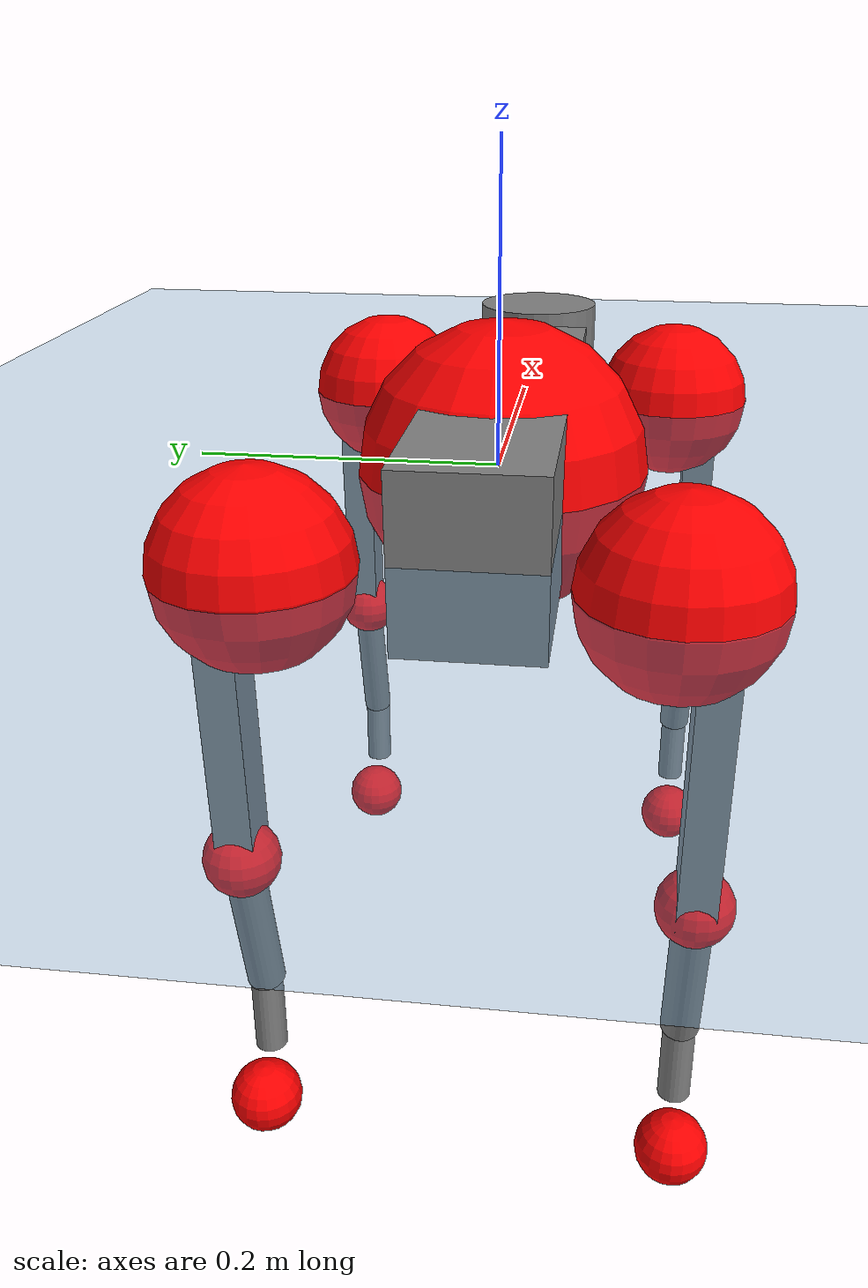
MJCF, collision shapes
<mujoco model="go2">
  <compiler angle="radian" assetdir="assets" balanceinertia="true" inertiafromgeom="false"/>

  <option timestep="0.005" density="1.2" viscosity="2e-05"/>

  <size nkey="1"/>

  <visual>
    <quality shadowsize="8192"/>
    <map shadowclip="0.5"/>
  </visual>

  <default>
    <default class="/">
      <geom contype="0" conaffinity="0" group="1" solref="-1000 -80"/>
      <site size="0.01 0.005 0.005" group="5"/>
      <general forcelimited="true" biastype="affine" gainprm="20" biasprm="0 -20 -0.5"/>
      <default class="go2">
        <joint armature="0.01" damping="0.01" frictionloss="0.2"/>
        <geom condim="1" margin="0.001"/>
        <default class="visual">
          <geom type="mesh" group="2"/>
        </default>
        <default class="collision">
          <geom group="3"/>
          <default class="foot">
            <geom size="0.022 0 0" condim="6" priority="1" friction="0.8 0.02 0.01" solimp="0.015 1 0.022"/>
          </default>
        </default>
        <default class="reward_collision_sphere">
          <geom group="5" rgba="1 0 0 1"/>
        </default>
      </default>
    </default>
  </default>

  <asset>
    <texture type="skybox" colorspace="auto" name="//unnamed_texture_0" builtin="gradient" rgb1="0.95 0.95 0.95" rgb2="0.95 0.95 0.95" width="100" height="600"/>
    <texture type="2d" colorspace="auto" name="texplane" builtin="checker" rgb1="0.345 0.575 0.748" rgb2="0.345 0.575 0.748" markrgb="1 1 1" width="512" height="512"/>
    <material name="MatPlane" class="/" texture="texplane" texuniform="true" texrepeat="2 2" specular="0.9"/>
    <material name="metal" class="/" rgba="0.9 0.95 0.95 1"/>
    <material name="black" class="/" rgba="0 0 0 1"/>
    <material name="white" class="/"/>
    <material name="gray" class="/" rgba="0.671705 0.692426 0.77427 1"/>
    <mesh name="base_0" class="/" file="base_0.obj"/>
    <mesh name="base_1" class="/" file="base_1.obj"/>
    <mesh name="base_2" class="/" file="base_2.obj"/>
    <mesh name="base_3" class="/" file="base_3.obj"/>
    <mesh name="base_4" class="/" file="base_4.obj"/>
    <mesh name="hip_0" class="/" file="hip_0.obj"/>
    <mesh name="hip_1" class="/" file="hip_1.obj"/>
    <mesh name="thigh_0" class="/" file="thigh_0.obj"/>
    <mesh name="thigh_1" class="/" file="thigh_1.obj"/>
    <mesh name="thigh_mirror_0" class="/" file="thigh_mirror_0.obj"/>
    <mesh name="thigh_mirror_1" class="/" file="thigh_mirror_1.obj"/>
    <mesh name="calf_0" class="/" file="calf_0.obj"/>
    <mesh name="calf_1" class="/" file="calf_1.obj"/>
    <mesh name="calf_mirror_0" class="/" file="calf_mirror_0.obj"/>
    <mesh name="calf_mirror_1" class="/" file="calf_mirror_1.obj"/>
    <mesh name="foot" class="/" file="foot.obj"/>
  </asset>

  <worldbody>
    <geom name="floor" class="/" size="100 100 0.125" type="plane" group="0" material="MatPlane"/>
    <light name="toplight_shadow" class="/" pos="0 0 5" dir="0.0990148 0.0990148 -0.990148" type="directional" ambient="0.04 0.04 0.04" diffuse="0.55 0.55 0.55" specular="0.12 0.12 0.12"/>
    <light name="toplight_fill" class="/" pos="0 0 5" dir="0.0990148 0.0990148 -0.990148" type="directional" castshadow="false" ambient="0.04 0.04 0.04" diffuse="0.3 0.3 0.3" specular="0.08 0.08 0.08"/>
    <body name="trunk" childclass="go2" pos="-0.000442841 -0.00275119 -0.000560648" quat="0.999999 -0.000581803 -0.000925514 -0.000842481">
      <inertial pos="0.0182181 -0.00187961 -0.00209424" quat="-0.00537577 0.712422 0.00898378 0.701673" mass="5.84001" diaginertia="0.0921001 0.072798 0.0145731"/>
      <joint name="//unnamed_joint_0" type="free" armature="0" damping="0" frictionloss="0"/>
      <geom name="//unnamed_geom_1" class="visual" material="black" mesh="base_0"/>
      <geom name="//unnamed_geom_2" class="visual" material="black" mesh="base_1"/>
      <geom name="//unnamed_geom_3" class="visual" material="black" mesh="base_2"/>
      <geom name="//unnamed_geom_4" class="visual" material="white" mesh="base_3"/>
      <geom name="//unnamed_geom_5" class="visual" material="gray" mesh="base_4"/>
      <geom name="trunk_1" class="collision" size="0.177295 0.0440645 0.0537257" type="box"/>
      <geom name="trunk_2" class="collision" size="0.0471278 0.042415" pos="0.279345 0 0.00900346" type="cylinder"/>
      <geom name="trunk_3" class="collision" size="0.0443001" pos="0.287186 0 -0.0540208"/>
      <geom name="//unnamed_geom_9" class="reward_collision_sphere" size="0.0942555"/>
      <geom name="//unnamed_geom_10" class="reward_collision_sphere" size="0.0565533" pos="0.274444 0 -0.0405156"/>
      <site name="imu" pos="-0.0198901 -0.00304729 0.0351307" size="0.00942555"/>
      <camera name="track" pos="0 -1.89433 0" quat="0.707107 0.707107 0 0" mode="trackcom"/>
      <camera name="ego_camera" pos="0.305809 0 0.0405156" quat="-0.5 -0.5 0.5 0.5"/>
      <body name="FL_hip" pos="0.188749 0.0446629 -0.00034774" quat="1 0.000223007 -8.43211e-05 -0.000119496">
        <inertial pos="-0.00569335 -0.000716781 -0.00106342" quat="0.491492 0.501514 0.508207 0.498643" mass="0.565093" diaginertia="0.000801795 0.000440785 0.000283596"/>
        <joint name="FL_hip_joint" pos="0 0 0" axis="0.999905 -0.0134015 -0.00322653" stiffness="0.0114013" range="-1.09488 1.06541" armature="0.00956831" damping="0" frictionloss="0.183602"/>
        <geom name="//unnamed_geom_11" class="visual" material="metal" mesh="hip_0"/>
        <geom name="//unnamed_geom_12" class="visual" material="gray" mesh="hip_1"/>
        <geom name="//unnamed_geom_13" class="collision" size="0.0433575 0.0188511" pos="0 0.0757731 0" quat="0.707107 0.707107 0 0" type="cylinder"/>
        <geom name="//unnamed_geom_14" class="reward_collision_sphere" size="0.0565533" pos="0 0.0663014 0"/>
        <body name="FL_thigh" pos="0.0020147 0.0925171 -0.000388493" quat="1 -0.000308818 -7.62727e-05 0.000866045">
          <inertial pos="-0.00351429 -0.0194405 -0.0282453" quat="0.829467 0.091619 -0.021239 0.550581" mass="0.998556" diaginertia="0.00524523 0.0045943 0.000522008"/>
          <joint name="FL_thigh_joint" pos="0 0 0" axis="0.000623852 0.999868 -0.0162112" stiffness="0.0130888" range="-1.62525 3.44352" armature="0.0102446" damping="0.000449338" frictionloss="0.165785"/>
          <geom name="//unnamed_geom_15" class="visual" material="metal" mesh="thigh_0"/>
          <geom name="//unnamed_geom_16" class="visual" material="gray" mesh="thigh_1"/>
          <geom name="//unnamed_geom_17" class="collision" size="0.100382 0.0115463 0.0160234" pos="0 0 -0.0958869" quat="0.707107 0 0.707107 0" type="box"/>
          <body name="FL_calf" pos="-1.65973e-06 -0.0016229 -0.191212" quat="1 0.000306626 -3.6154e-05 0.000209523">
            <inertial pos="0.0036419 -0.00311124 -0.129612" quat="0.709007 -0.00284072 -0.00300749 0.705189" mass="0.197542" diaginertia="0.00129926 0.0011099 3.07857e-05"/>
            <joint name="FL_calf_joint" pos="0 0 0" axis="-0.00162602 0.999939 0.0108987" stiffness="0.0141109" range="-2.69029 -0.782152" armature="0.00821351" damping="0" frictionloss="0.195722"/>
            <geom name="//unnamed_geom_18" class="visual" material="gray" mesh="calf_0"/>
            <geom name="//unnamed_geom_19" class="visual" material="black" mesh="calf_1"/>
            <geom name="FL_calf0" class="collision" size="0.0113107 0.0565533" pos="0.00784125 0 -0.0540208" quat="0.994493 0 -0.104807 0" type="cylinder"/>
            <geom name="//unnamed_geom_21" class="collision" size="0.0103681 0.030633" pos="0.0196031 0 -0.133251" quat="0.999688 0 0.0249974 0" type="cylinder"/>
            <geom name="//unnamed_geom_22" class="visual" pos="0 0 -0.191774" quat="1 0 0 0" material="black" mesh="foot"/>
            <geom name="FL_foot" class="foot" size="0.0160126" pos="-0.00196031 0 -0.191774"/>
            <geom name="//unnamed_geom_24" class="reward_collision_sphere" size="0.0235639"/>
            <geom name="//unnamed_geom_25" class="reward_collision_sphere" size="0.0235639" pos="-0.00196031 0 -0.191774"/>
            <site name="FL_foot" class="foot" pos="-0.00196031 0 -0.191774" size="0.00942555"/>
          </body>
        </body>
      </body>
      <body name="FR_hip" pos="0.187862 -0.0457911 -0.00150292" quat="1 -6.76427e-05 0.000589366 -0.000184679">
        <inertial pos="-0.0039998 -0.000538458 -0.00101338" quat="0.501247 0.494941 0.501734 0.502043" mass="0.561346" diaginertia="0.000774939 0.000454705 0.000288559"/>
        <joint name="FR_hip_joint" pos="0 0 0" axis="0.999923 0.00805342 0.00939839" range="-1.07026 1.10378" armature="0.00856997" damping="0.00538576" frictionloss="0.191297"/>
        <geom name="//unnamed_geom_26" class="visual" pos="0 4.0785e-10 1.74935e-08" quat="4.63268e-05 1 0 0" material="metal" mesh="hip_0"/>
        <geom name="//unnamed_geom_27" class="visual" pos="0 6.61174e-10 -4.32682e-08" quat="4.63268e-05 1 0 0" material="gray" mesh="hip_1"/>
        <geom name="//unnamed_geom_28" class="collision" size="0.0433575 0.0188511" pos="0 -0.0757731 0" quat="0.707107 0.707107 0 0" type="cylinder"/>
        <geom name="//unnamed_geom_29" class="reward_collision_sphere" size="0.0565533" pos="0 -0.0663014 0"/>
        <body name="FR_thigh" pos="7.14583e-06 -0.0901358 0.00119885" quat="1 0.00013947 -1.64863e-05 6.60553e-05">
          <inertial pos="-0.00118529 0.0186183 -0.0271518" quat="0.547553 -0.0213226 0.0842951 0.832241" mass="0.972335" diaginertia="0.0052153 0.00446138 0.000520935"/>
          <joint name="FR_thigh_joint" pos="0 0 0" axis="1.1723e-05 -1 -3.78996e-05" stiffness="0.00629071" range="-3.48857 1.5837" armature="0.00834455" damping="0.0249906" frictionloss="0.163914"/>
          <geom name="//unnamed_geom_30" class="visual" material="metal" mesh="thigh_mirror_0"/>
          <geom name="//unnamed_geom_31" class="visual" material="gray" mesh="thigh_mirror_1"/>
          <geom name="//unnamed_geom_32" class="collision" size="0.100382 0.0115463 0.0160234" pos="0 0 -0.0958869" quat="0.707107 0 0.707107 0" type="box"/>
          <body name="FR_calf" pos="-0.00196709 -0.000145325 -0.188374" quat="1 -0.000150147 -9.28294e-05 -0.000134017">
            <inertial pos="0.00355602 0.00340638 -0.127065" quat="0.703026 -0.0104871 0.00654153 0.711057" mass="0.206742" diaginertia="0.00135543 0.0011805 3.11013e-05"/>
            <joint name="FR_calf_joint" pos="0 0 0" axis="0.00678366 -0.999976 -0.00110253" stiffness="0.000369435" range="0.847002 2.72442" armature="0.00986549" damping="0" frictionloss="0.177783"/>
            <geom name="//unnamed_geom_33" class="visual" material="gray" mesh="calf_mirror_0"/>
            <geom name="//unnamed_geom_34" class="visual" material="black" mesh="calf_mirror_1"/>
            <geom name="FR_calf0" class="collision" size="0.0122532 0.0565533" pos="0.00980156 0 -0.0540208" quat="0.995004 0 -0.0998334 0" type="cylinder"/>
            <geom name="//unnamed_geom_36" class="collision" size="0.0103681 0.030633" pos="0.0196031 0 -0.133251" quat="0.999688 0 0.0249974 0" type="cylinder"/>
            <geom name="//unnamed_geom_37" class="visual" pos="0 0 -0.191774" quat="1 0 0 0" material="black" mesh="foot"/>
            <geom name="FR_foot" class="foot" size="0.0200229" pos="-0.00196031 0 -0.191774"/>
            <geom name="//unnamed_geom_39" class="reward_collision_sphere" size="0.0235639"/>
            <geom name="//unnamed_geom_40" class="reward_collision_sphere" size="0.0235639" pos="-0.00196031 0 -0.191774"/>
            <site name="FR_foot" class="foot" pos="-0.00196031 0 -0.191774" size="0.00942555"/>
          </body>
        </body>
      </body>
      <body name="RL_hip" pos="-0.188937 0.0460476 0.00119125" quat="1 0.000274102 0.00025602 0.000216875">
        <inertial pos="0.00478146 0.00279354 0.00277826" quat="0.504866 0.499272 0.496439 0.499385" mass="0.547032" diaginertia="0.000792743 0.000435153 0.000287782"/>
        <joint name="RL_hip_joint" pos="0 0 0" axis="-0.999929 -0.000552572 0.0119346" stiffness="0.0109504" range="-0.995634 1.02015" armature="0.00962695" damping="0.0112932" frictionloss="0.215101"/>
        <geom name="//unnamed_geom_41" class="visual" pos="-6.9527e-10 0 -1.36289e-07" quat="4.63268e-05 0 1 0" material="metal" mesh="hip_0"/>
        <geom name="//unnamed_geom_42" class="visual" pos="-1.12712e-09 0 -1.20869e-07" quat="4.63268e-05 0 1 0" material="gray" mesh="hip_1"/>
        <geom name="//unnamed_geom_43" class="collision" size="0.0433575 0.0188511" pos="0 0.0757731 0" quat="0.707107 0.707107 0 0" type="cylinder"/>
        <geom name="//unnamed_geom_44" class="reward_collision_sphere" size="0.0565533" pos="0 0.0663014 0"/>
        <body name="RL_thigh" pos="-0.000419582 0.0879956 0.00261011" quat="0.999999 -0.000708005 -0.000971324 -4.14896e-05">
          <inertial pos="-0.0031064 -0.0197019 -0.0282016" quat="0.821779 0.0839176 -0.0225796 0.563141" mass="0.942776" diaginertia="0.0052341 0.00459774 0.000537515"/>
          <joint name="RL_thigh_joint" pos="0 0 0" axis="0.00656063 0.999978 -0.000533004" stiffness="0.00305475" range="-0.501233 4.54332" armature="0.0107091" damping="0.0237458" frictionloss="0.165936"/>
          <geom name="//unnamed_geom_45" class="visual" material="metal" mesh="thigh_0"/>
          <geom name="//unnamed_geom_46" class="visual" material="gray" mesh="thigh_1"/>
          <geom name="//unnamed_geom_47" class="collision" size="0.100382 0.0115463 0.0160234" pos="0 0 -0.0958869" quat="0.707107 0 0.707107 0" type="box"/>
          <body name="RL_calf" pos="-0.00219602 5.32204e-05 -0.189547" quat="0.999999 -0.000680692 -0.00101752 -0.000113448">
            <inertial pos="0.00621667 0.00220296 -0.126239" quat="0.709422 0.000442635 -0.00146194 0.704783" mass="0.198573" diaginertia="0.00128606 0.00106425 2.99936e-05"/>
            <joint name="RL_calf_joint" pos="0 0 0" axis="-0.0062559 0.999949 -0.00792042" stiffness="0.0101011" range="-2.68456 -0.823775" armature="0.010224" damping="0.0133847" frictionloss="0.163298"/>
            <geom name="//unnamed_geom_48" class="visual" material="gray" mesh="calf_0"/>
            <geom name="//unnamed_geom_49" class="visual" material="black" mesh="calf_1"/>
            <geom name="RL_calf0" class="collision" size="0.0122532 0.0565533" pos="0.00980156 0 -0.0540208" quat="0.995004 0 -0.0998334 0" type="cylinder"/>
            <geom name="//unnamed_geom_51" class="collision" size="0.0103681 0.030633" pos="0.0196031 0 -0.133251" quat="0.999688 0 0.0249974 0" type="cylinder"/>
            <geom name="//unnamed_geom_52" class="visual" pos="0 0 -0.191774" quat="1 0 0 0" material="black" mesh="foot"/>
            <geom name="RL_foot" class="foot" size="0.0174982" pos="-0.00196031 0 -0.191774"/>
            <geom name="//unnamed_geom_54" class="reward_collision_sphere" size="0.0235639"/>
            <geom name="//unnamed_geom_55" class="reward_collision_sphere" size="0.0235639" pos="-0.00196031 0 -0.191774"/>
            <site name="RL_foot" class="foot" pos="-0.00196031 0 -0.191774" size="0.00942555"/>
          </body>
        </body>
      </body>
      <body name="RR_hip" pos="-0.191526 -0.0454384 -0.00121083" quat="1 0.000150249 0.000429862 -0.000498279">
        <inertial pos="0.00450071 -0.00222973 0.000753706" quat="0.49984 0.495079 0.497807 0.507193" mass="0.554548" diaginertia="0.000780677 0.000445336 0.000281233"/>
        <joint name="RR_hip_joint" pos="0 0 0" axis="-0.999996 0.000809133 0.00266118" stiffness="0.0104576" range="-1.03323 1.10241" armature="0.0105684" damping="0.00621491" frictionloss="0.213002"/>
        <geom name="//unnamed_geom_56" class="visual" pos="6.94127e-10 4.0785e-10 -1.53782e-07" quat="2.14617e-09 4.63268e-05 4.63268e-05 -1" material="metal" mesh="hip_0"/>
        <geom name="//unnamed_geom_57" class="visual" pos="1.12994e-09 6.61174e-10 -7.76006e-08" quat="2.14617e-09 4.63268e-05 4.63268e-05 -1" material="gray" mesh="hip_1"/>
        <geom name="//unnamed_geom_58" class="collision" size="0.0433575 0.0188511" pos="0 -0.0757731 0" quat="0.707107 0.707107 0 0" type="cylinder"/>
        <geom name="//unnamed_geom_59" class="reward_collision_sphere" size="0.0565533" pos="0 -0.0663014 0"/>
        <body name="RR_thigh" pos="-0.0024763 -0.0882272 -0.00309478" quat="1 1.93303e-05 0.000168748 0.000517286">
          <inertial pos="-0.00334165 0.0184165 -0.0294544" quat="0.547621 -0.0197855 0.0854818 0.832113" mass="0.966699" diaginertia="0.00543364 0.00441636 0.000500374"/>
          <joint name="RR_thigh_joint" pos="0 0 0" axis="0.0024691 -0.999986 -0.00474031" stiffness="0.011234" range="-4.54843 0.556887" armature="0.00849475" damping="0.0247683" frictionloss="0.196107"/>
          <geom name="//unnamed_geom_60" class="visual" material="metal" mesh="thigh_mirror_0"/>
          <geom name="//unnamed_geom_61" class="visual" material="gray" mesh="thigh_mirror_1"/>
          <geom name="//unnamed_geom_62" class="collision" size="0.100382 0.0115463 0.0160234" pos="0 0 -0.0958869" quat="0.707107 0 0.707107 0" type="box"/>
          <body name="RR_calf" pos="0.00359526 -0.000102113 -0.191892" quat="1 0.000107397 -0.000464685 -2.07555e-05">
            <inertial pos="0.00363497 -0.000495556 -0.127171" quat="0.703312 -0.00440213 0.00310372 0.710861" mass="0.208202" diaginertia="0.00134783 0.00113954 3.1709e-05"/>
            <joint name="RR_calf_joint" pos="0 0 0" axis="0.00822563 -0.999956 0.00443087" range="0.886478 2.76555" armature="0.00983222" damping="0.0155958" frictionloss="0.210717"/>
            <geom name="//unnamed_geom_63" class="visual" material="gray" mesh="calf_mirror_0"/>
            <geom name="//unnamed_geom_64" class="visual" material="black" mesh="calf_mirror_1"/>
            <geom name="RR_calf0" class="collision" size="0.0122532 0.0565533" pos="0.00980156 0 -0.0540208" quat="0.995004 0 -0.0998334 0" type="cylinder"/>
            <geom name="//unnamed_geom_66" class="collision" size="0.0103681 0.030633" pos="0.0196031 0 -0.133251" quat="0.999688 0 0.0249974 0" type="cylinder"/>
            <geom name="//unnamed_geom_67" class="visual" pos="0 0 -0.191774" quat="1 0 0 0" material="black" mesh="foot"/>
            <geom name="RR_foot" class="foot" size="0.0222988" pos="-0.00196031 0 -0.191774"/>
            <geom name="//unnamed_geom_69" class="reward_collision_sphere" size="0.0235639"/>
            <geom name="//unnamed_geom_70" class="reward_collision_sphere" size="0.0235639" pos="-0.00196031 0 -0.191774"/>
            <site name="RR_foot" class="foot" pos="-0.00196031 0 -0.191774" size="0.00942555"/>
          </body>
        </body>
      </body>
    </body>
  </worldbody>

  <contact>
    <pair class="/" geom1="floor" geom2="FL_foot" name="//unnamed_contact_0"/>
    <pair class="/" geom1="floor" geom2="FR_foot" name="//unnamed_contact_1"/>
    <pair class="/" geom1="floor" geom2="RL_foot" name="//unnamed_contact_2"/>
    <pair class="/" geom1="floor" geom2="RR_foot" name="//unnamed_contact_3"/>
  </contact>

  <actuator>
    <general name="FL_hip" class="/" joint="FL_hip_joint" forcerange="-23.9116 23.9116" gainprm="18.7724" biasprm="0 -18.7724 -0.465977"/>
    <general name="FL_thigh" class="/" joint="FL_thigh_joint" forcerange="-21.9371 21.9371" gainprm="18.7724" biasprm="0 -18.7724 -0.465977"/>
    <general name="FL_calf" class="/" joint="FL_calf_joint" forcerange="-41.9341 41.9341" gainprm="18.7724" biasprm="0 -18.7724 -0.465977"/>
    <general name="FR_hip" class="/" joint="FR_hip_joint" forcerange="-20.4889 20.4889" gainprm="18.7724" biasprm="0 -18.7724 -0.465977"/>
    <general name="FR_thigh" class="/" joint="FR_thigh_joint" forcerange="-22.4639 22.4639" gainprm="18.7724" biasprm="0 -18.7724 -0.465977"/>
    <general name="FR_calf" class="/" joint="FR_calf_joint" forcerange="-37.9916 37.9916" gainprm="18.7724" biasprm="0 -18.7724 -0.465977"/>
    <general name="RL_hip" class="/" joint="RL_hip_joint" forcerange="-21.6784 21.6784" gainprm="18.7724" biasprm="0 -18.7724 -0.465977"/>
    <general name="RL_thigh" class="/" joint="RL_thigh_joint" forcerange="-22.1945 22.1945" gainprm="18.7724" biasprm="0 -18.7724 -0.465977"/>
    <general name="RL_calf" class="/" joint="RL_calf_joint" forcerange="-43.7082 43.7082" gainprm="18.7724" biasprm="0 -18.7724 -0.465977"/>
    <general name="RR_hip" class="/" joint="RR_hip_joint" forcerange="-20.6444 20.6444" gainprm="18.7724" biasprm="0 -18.7724 -0.465977"/>
    <general name="RR_thigh" class="/" joint="RR_thigh_joint" forcerange="-23.2818 23.2818" gainprm="18.7724" biasprm="0 -18.7724 -0.465977"/>
    <general name="RR_calf" class="/" joint="RR_calf_joint" forcerange="-46.7171 46.7171" gainprm="18.7724" biasprm="0 -18.7724 -0.465977"/>
  </actuator>

  <sensor>
    <gyro site="imu" name="imu_angular_velocity"/>
    <velocimeter site="imu" name="imu_linear_velocity"/>
    <framelinvel objtype="site" objname="FL_foot" name="FL_foot_global_linear_velocity"/>
    <framelinvel objtype="site" objname="FR_foot" name="FR_foot_global_linear_velocity"/>
    <framelinvel objtype="site" objname="RL_foot" name="RL_foot_global_linear_velocity"/>
    <framelinvel objtype="site" objname="RR_foot" name="RR_foot_global_linear_velocity"/>
  </sensor>

  <keyframe>
    <key name="home" qpos="0 0 0.325 1 0 0 0 0.1 0.8 -1.5 -0.1 -0.8 1.5 -0.1 0.8 -1.5 0.1 -0.8 1.5"/>
  </keyframe>
</mujoco>
